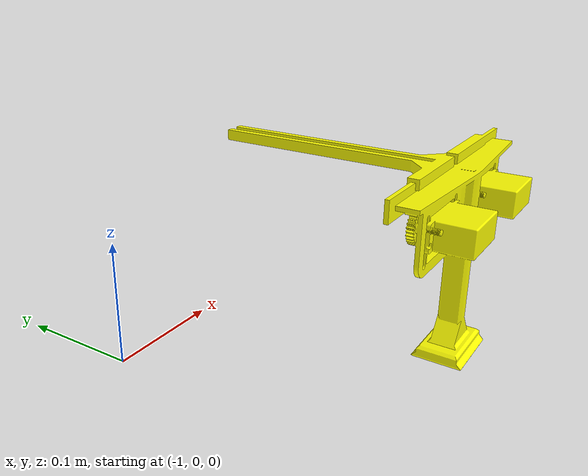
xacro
<?xml version="1.0"?>
<robot xmlns:xacro="http://www.ros.org/wiki/xacro">
  <xacro:arg name="tf_prefix" default=""/>

  <link name="$(arg tf_prefix)end_eff_base_link">
    <visual>
      <origin xyz="-1.077 0.155 0.172" rpy="-1.5707 0 -1.5707"/>
      <geometry>
        <mesh filename="package://ur_description_custom/meshes/end_eff/assembly.stl" scale="0.001 0.001 0.001"/>
      </geometry>
      <material name="yellow">
        <color rgba="1 1 0 1"/>
      </material>
    </visual>
    <collision>
      <origin xyz="0.42 0 0.1" rpy="0 -1.5708 0"/>
      <geometry>
        <mesh filename="package://ur_description_custom/meshes/end_eff/collision.stl" scale="0.001 0.002 0.0015"/>
      </geometry>
    </collision>
  </link>
</robot>
